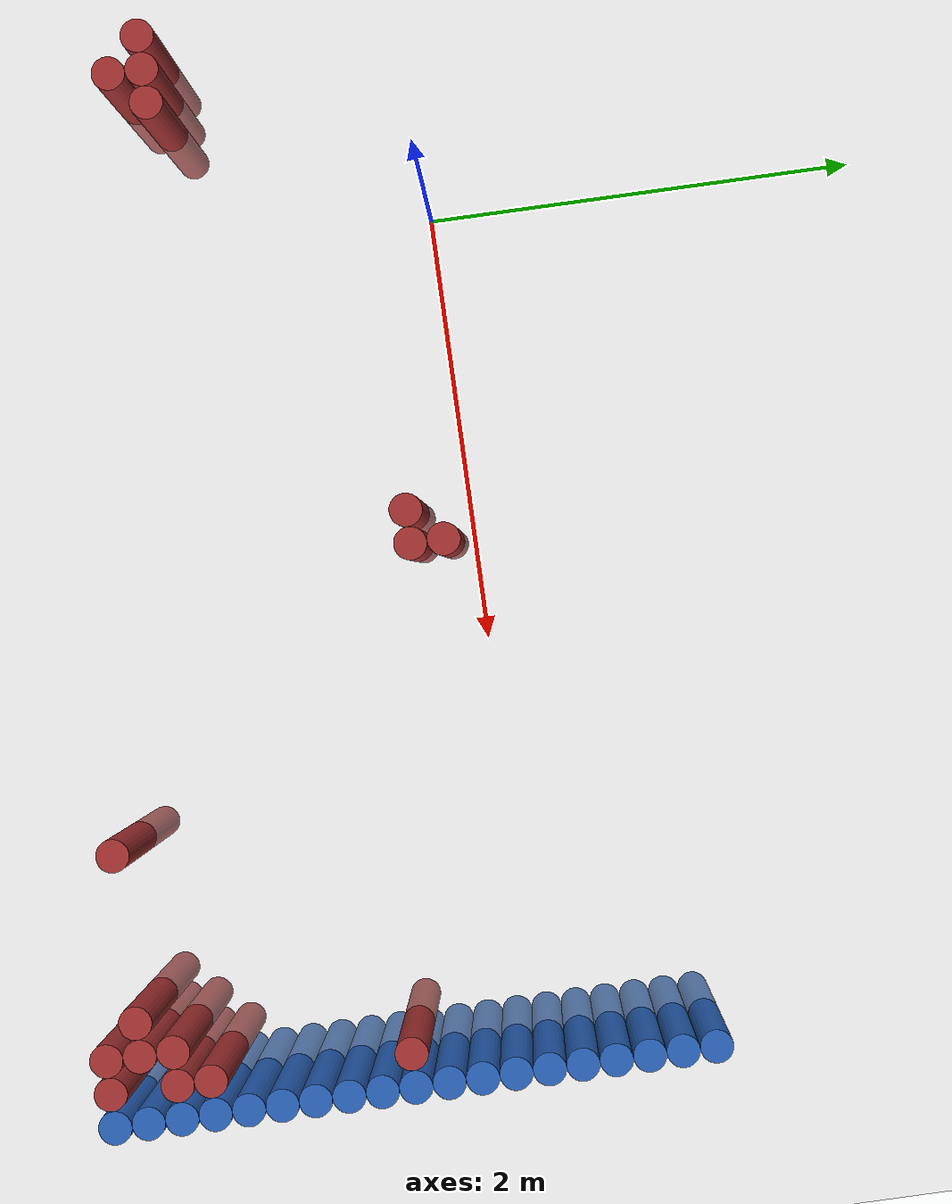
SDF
<sdf version="1.6">
 <world name="default">
  <model name="ground_plane">
   <static>1</static>
   <link name="link">
    <collision name="collision">
     <geometry><plane><normal>0 0 1</normal><size>100 100</size></plane></geometry>
     <surface><friction><ode><mu>100</mu><mu2>50</mu2></ode></friction></surface>
    </collision>
    <visual name="visual">
     <cast_shadows>0</cast_shadows>
     <geometry><plane><normal>0 0 1</normal><size>100 100</size></plane></geometry>
     <material>
      <script><uri>file://media/materials/scripts/gazebo.material</uri><name>Gazebo/Grey</name></script>
     </material>
    </visual>
   </link>
  </model>
  <model name="unit_cylinder_88">
   <static>1</static>
   <pose>3.925000 -1.925000 0.000000 0.000000 0.000000 0.000000</pose>
   <link name="link">
    <inertial>
     <mass>1</mass>
     <inertia><ixx>0.145833</ixx><ixy>0</ixy><ixz>0</ixz><iyy>0.145833</iyy><iyz>0</iyz><izz>0.125</izz></inertia>
    </inertial>
    <collision name="collision">
     <geometry><cylinder><radius>0.075000</radius><length>1.5</length></cylinder></geometry>
    </collision>
    <visual name="visual">
     <geometry><cylinder><radius>0.075000</radius><length>1.5</length></cylinder></geometry>
     <material>
      <ambient>0.152000 0.379000 0.720000 1</ambient>
      <diffuse>0.152000 0.379000 0.720000 1</diffuse>
     </material>
     <material>
      <script><name>Gazebo/Grey</name><uri>file://media/materials/scripts/gazebo.material</uri></script>
     </material>
    </visual>
   </link>
  </model>
  <model name="unit_cylinder_90">
   <static>1</static>
   <pose>3.925000 -1.775000 0.000000 0.000000 0.000000 0.000000</pose>
   <link name="link">
    <inertial>
     <mass>1</mass>
     <inertia><ixx>0.145833</ixx><ixy>0</ixy><ixz>0</ixz><iyy>0.145833</iyy><iyz>0</iyz><izz>0.125</izz></inertia>
    </inertial>
    <collision name="collision">
     <geometry><cylinder><radius>0.075000</radius><length>1.5</length></cylinder></geometry>
    </collision>
    <visual name="visual">
     <geometry><cylinder><radius>0.075000</radius><length>1.5</length></cylinder></geometry>
     <material>
      <ambient>0.152000 0.379000 0.720000 1</ambient>
      <diffuse>0.152000 0.379000 0.720000 1</diffuse>
     </material>
     <material>
      <script><name>Gazebo/Grey</name><uri>file://media/materials/scripts/gazebo.material</uri></script>
     </material>
    </visual>
   </link>
  </model>
  <model name="unit_cylinder_92">
   <static>1</static>
   <pose>3.925000 -1.625000 0.000000 0.000000 0.000000 0.000000</pose>
   <link name="link">
    <inertial>
     <mass>1</mass>
     <inertia><ixx>0.145833</ixx><ixy>0</ixy><ixz>0</ixz><iyy>0.145833</iyy><iyz>0</iyz><izz>0.125</izz></inertia>
    </inertial>
    <collision name="collision">
     <geometry><cylinder><radius>0.075000</radius><length>1.5</length></cylinder></geometry>
    </collision>
    <visual name="visual">
     <geometry><cylinder><radius>0.075000</radius><length>1.5</length></cylinder></geometry>
     <material>
      <ambient>0.152000 0.379000 0.720000 1</ambient>
      <diffuse>0.152000 0.379000 0.720000 1</diffuse>
     </material>
     <material>
      <script><name>Gazebo/Grey</name><uri>file://media/materials/scripts/gazebo.material</uri></script>
     </material>
    </visual>
   </link>
  </model>
  <model name="unit_cylinder_94">
   <static>1</static>
   <pose>3.925000 -1.475000 0.000000 0.000000 0.000000 0.000000</pose>
   <link name="link">
    <inertial>
     <mass>1</mass>
     <inertia><ixx>0.145833</ixx><ixy>0</ixy><ixz>0</ixz><iyy>0.145833</iyy><iyz>0</iyz><izz>0.125</izz></inertia>
    </inertial>
    <collision name="collision">
     <geometry><cylinder><radius>0.075000</radius><length>1.5</length></cylinder></geometry>
    </collision>
    <visual name="visual">
     <geometry><cylinder><radius>0.075000</radius><length>1.5</length></cylinder></geometry>
     <material>
      <ambient>0.152000 0.379000 0.720000 1</ambient>
      <diffuse>0.152000 0.379000 0.720000 1</diffuse>
     </material>
     <material>
      <script><name>Gazebo/Grey</name><uri>file://media/materials/scripts/gazebo.material</uri></script>
     </material>
    </visual>
   </link>
  </model>
  <model name="unit_cylinder_96">
   <static>1</static>
   <pose>3.925000 -1.325000 0.000000 0.000000 0.000000 0.000000</pose>
   <link name="link">
    <inertial>
     <mass>1</mass>
     <inertia><ixx>0.145833</ixx><ixy>0</ixy><ixz>0</ixz><iyy>0.145833</iyy><iyz>0</iyz><izz>0.125</izz></inertia>
    </inertial>
    <collision name="collision">
     <geometry><cylinder><radius>0.075000</radius><length>1.5</length></cylinder></geometry>
    </collision>
    <visual name="visual">
     <geometry><cylinder><radius>0.075000</radius><length>1.5</length></cylinder></geometry>
     <material>
      <ambient>0.152000 0.379000 0.720000 1</ambient>
      <diffuse>0.152000 0.379000 0.720000 1</diffuse>
     </material>
     <material>
      <script><name>Gazebo/Grey</name><uri>file://media/materials/scripts/gazebo.material</uri></script>
     </material>
    </visual>
   </link>
  </model>
  <model name="unit_cylinder_98">
   <static>1</static>
   <pose>3.925000 -1.175000 0.000000 0.000000 0.000000 0.000000</pose>
   <link name="link">
    <inertial>
     <mass>1</mass>
     <inertia><ixx>0.145833</ixx><ixy>0</ixy><ixz>0</ixz><iyy>0.145833</iyy><iyz>0</iyz><izz>0.125</izz></inertia>
    </inertial>
    <collision name="collision">
     <geometry><cylinder><radius>0.075000</radius><length>1.5</length></cylinder></geometry>
    </collision>
    <visual name="visual">
     <geometry><cylinder><radius>0.075000</radius><length>1.5</length></cylinder></geometry>
     <material>
      <ambient>0.152000 0.379000 0.720000 1</ambient>
      <diffuse>0.152000 0.379000 0.720000 1</diffuse>
     </material>
     <material>
      <script><name>Gazebo/Grey</name><uri>file://media/materials/scripts/gazebo.material</uri></script>
     </material>
    </visual>
   </link>
  </model>
  <model name="unit_cylinder_100">
   <static>1</static>
   <pose>3.925000 -1.025000 0.000000 0.000000 0.000000 0.000000</pose>
   <link name="link">
    <inertial>
     <mass>1</mass>
     <inertia><ixx>0.145833</ixx><ixy>0</ixy><ixz>0</ixz><iyy>0.145833</iyy><iyz>0</iyz><izz>0.125</izz></inertia>
    </inertial>
    <collision name="collision">
     <geometry><cylinder><radius>0.075000</radius><length>1.5</length></cylinder></geometry>
    </collision>
    <visual name="visual">
     <geometry><cylinder><radius>0.075000</radius><length>1.5</length></cylinder></geometry>
     <material>
      <ambient>0.152000 0.379000 0.720000 1</ambient>
      <diffuse>0.152000 0.379000 0.720000 1</diffuse>
     </material>
     <material>
      <script><name>Gazebo/Grey</name><uri>file://media/materials/scripts/gazebo.material</uri></script>
     </material>
    </visual>
   </link>
  </model>
  <model name="unit_cylinder_102">
   <static>1</static>
   <pose>3.925000 -0.875000 0.000000 0.000000 0.000000 0.000000</pose>
   <link name="link">
    <inertial>
     <mass>1</mass>
     <inertia><ixx>0.145833</ixx><ixy>0</ixy><ixz>0</ixz><iyy>0.145833</iyy><iyz>0</iyz><izz>0.125</izz></inertia>
    </inertial>
    <collision name="collision">
     <geometry><cylinder><radius>0.075000</radius><length>1.5</length></cylinder></geometry>
    </collision>
    <visual name="visual">
     <geometry><cylinder><radius>0.075000</radius><length>1.5</length></cylinder></geometry>
     <material>
      <ambient>0.152000 0.379000 0.720000 1</ambient>
      <diffuse>0.152000 0.379000 0.720000 1</diffuse>
     </material>
     <material>
      <script><name>Gazebo/Grey</name><uri>file://media/materials/scripts/gazebo.material</uri></script>
     </material>
    </visual>
   </link>
  </model>
  <model name="unit_cylinder_104">
   <static>1</static>
   <pose>3.925000 -0.725000 0.000000 0.000000 0.000000 0.000000</pose>
   <link name="link">
    <inertial>
     <mass>1</mass>
     <inertia><ixx>0.145833</ixx><ixy>0</ixy><ixz>0</ixz><iyy>0.145833</iyy><iyz>0</iyz><izz>0.125</izz></inertia>
    </inertial>
    <collision name="collision">
     <geometry><cylinder><radius>0.075000</radius><length>1.5</length></cylinder></geometry>
    </collision>
    <visual name="visual">
     <geometry><cylinder><radius>0.075000</radius><length>1.5</length></cylinder></geometry>
     <material>
      <ambient>0.152000 0.379000 0.720000 1</ambient>
      <diffuse>0.152000 0.379000 0.720000 1</diffuse>
     </material>
     <material>
      <script><name>Gazebo/Grey</name><uri>file://media/materials/scripts/gazebo.material</uri></script>
     </material>
    </visual>
   </link>
  </model>
  <model name="unit_cylinder_106">
   <static>1</static>
   <pose>3.925000 -0.575000 0.000000 0.000000 0.000000 0.000000</pose>
   <link name="link">
    <inertial>
     <mass>1</mass>
     <inertia><ixx>0.145833</ixx><ixy>0</ixy><ixz>0</ixz><iyy>0.145833</iyy><iyz>0</iyz><izz>0.125</izz></inertia>
    </inertial>
    <collision name="collision">
     <geometry><cylinder><radius>0.075000</radius><length>1.5</length></cylinder></geometry>
    </collision>
    <visual name="visual">
     <geometry><cylinder><radius>0.075000</radius><length>1.5</length></cylinder></geometry>
     <material>
      <ambient>0.152000 0.379000 0.720000 1</ambient>
      <diffuse>0.152000 0.379000 0.720000 1</diffuse>
     </material>
     <material>
      <script><name>Gazebo/Grey</name><uri>file://media/materials/scripts/gazebo.material</uri></script>
     </material>
    </visual>
   </link>
  </model>
  <model name="unit_cylinder_108">
   <static>1</static>
   <pose>3.925000 -0.425000 0.000000 0.000000 0.000000 0.000000</pose>
   <link name="link">
    <inertial>
     <mass>1</mass>
     <inertia><ixx>0.145833</ixx><ixy>0</ixy><ixz>0</ixz><iyy>0.145833</iyy><iyz>0</iyz><izz>0.125</izz></inertia>
    </inertial>
    <collision name="collision">
     <geometry><cylinder><radius>0.075000</radius><length>1.5</length></cylinder></geometry>
    </collision>
    <visual name="visual">
     <geometry><cylinder><radius>0.075000</radius><length>1.5</length></cylinder></geometry>
     <material>
      <ambient>0.152000 0.379000 0.720000 1</ambient>
      <diffuse>0.152000 0.379000 0.720000 1</diffuse>
     </material>
     <material>
      <script><name>Gazebo/Grey</name><uri>file://media/materials/scripts/gazebo.material</uri></script>
     </material>
    </visual>
   </link>
  </model>
  <model name="unit_cylinder_110">
   <static>1</static>
   <pose>3.925000 -0.275000 0.000000 0.000000 0.000000 0.000000</pose>
   <link name="link">
    <inertial>
     <mass>1</mass>
     <inertia><ixx>0.145833</ixx><ixy>0</ixy><ixz>0</ixz><iyy>0.145833</iyy><iyz>0</iyz><izz>0.125</izz></inertia>
    </inertial>
    <collision name="collision">
     <geometry><cylinder><radius>0.075000</radius><length>1.5</length></cylinder></geometry>
    </collision>
    <visual name="visual">
     <geometry><cylinder><radius>0.075000</radius><length>1.5</length></cylinder></geometry>
     <material>
      <ambient>0.152000 0.379000 0.720000 1</ambient>
      <diffuse>0.152000 0.379000 0.720000 1</diffuse>
     </material>
     <material>
      <script><name>Gazebo/Grey</name><uri>file://media/materials/scripts/gazebo.material</uri></script>
     </material>
    </visual>
   </link>
  </model>
  <model name="unit_cylinder_112">
   <static>1</static>
   <pose>3.925000 -0.125000 0.000000 0.000000 0.000000 0.000000</pose>
   <link name="link">
    <inertial>
     <mass>1</mass>
     <inertia><ixx>0.145833</ixx><ixy>0</ixy><ixz>0</ixz><iyy>0.145833</iyy><iyz>0</iyz><izz>0.125</izz></inertia>
    </inertial>
    <collision name="collision">
     <geometry><cylinder><radius>0.075000</radius><length>1.5</length></cylinder></geometry>
    </collision>
    <visual name="visual">
     <geometry><cylinder><radius>0.075000</radius><length>1.5</length></cylinder></geometry>
     <material>
      <ambient>0.152000 0.379000 0.720000 1</ambient>
      <diffuse>0.152000 0.379000 0.720000 1</diffuse>
     </material>
     <material>
      <script><name>Gazebo/Grey</name><uri>file://media/materials/scripts/gazebo.material</uri></script>
     </material>
    </visual>
   </link>
  </model>
  <model name="unit_cylinder_114">
   <static>1</static>
   <pose>3.925000 0.025000 0.000000 0.000000 0.000000 0.000000</pose>
   <link name="link">
    <inertial>
     <mass>1</mass>
     <inertia><ixx>0.145833</ixx><ixy>0</ixy><ixz>0</ixz><iyy>0.145833</iyy><iyz>0</iyz><izz>0.125</izz></inertia>
    </inertial>
    <collision name="collision">
     <geometry><cylinder><radius>0.075000</radius><length>1.5</length></cylinder></geometry>
    </collision>
    <visual name="visual">
     <geometry><cylinder><radius>0.075000</radius><length>1.5</length></cylinder></geometry>
     <material>
      <ambient>0.152000 0.379000 0.720000 1</ambient>
      <diffuse>0.152000 0.379000 0.720000 1</diffuse>
     </material>
     <material>
      <script><name>Gazebo/Grey</name><uri>file://media/materials/scripts/gazebo.material</uri></script>
     </material>
    </visual>
   </link>
  </model>
  <model name="unit_cylinder_116">
   <static>1</static>
   <pose>3.925000 0.175000 0.000000 0.000000 0.000000 0.000000</pose>
   <link name="link">
    <inertial>
     <mass>1</mass>
     <inertia><ixx>0.145833</ixx><ixy>0</ixy><ixz>0</ixz><iyy>0.145833</iyy><iyz>0</iyz><izz>0.125</izz></inertia>
    </inertial>
    <collision name="collision">
     <geometry><cylinder><radius>0.075000</radius><length>1.5</length></cylinder></geometry>
    </collision>
    <visual name="visual">
     <geometry><cylinder><radius>0.075000</radius><length>1.5</length></cylinder></geometry>
     <material>
      <ambient>0.152000 0.379000 0.720000 1</ambient>
      <diffuse>0.152000 0.379000 0.720000 1</diffuse>
     </material>
     <material>
      <script><name>Gazebo/Grey</name><uri>file://media/materials/scripts/gazebo.material</uri></script>
     </material>
    </visual>
   </link>
  </model>
  <model name="unit_cylinder_118">
   <static>1</static>
   <pose>3.925000 0.325000 0.000000 0.000000 0.000000 0.000000</pose>
   <link name="link">
    <inertial>
     <mass>1</mass>
     <inertia><ixx>0.145833</ixx><ixy>0</ixy><ixz>0</ixz><iyy>0.145833</iyy><iyz>0</iyz><izz>0.125</izz></inertia>
    </inertial>
    <collision name="collision">
     <geometry><cylinder><radius>0.075000</radius><length>1.5</length></cylinder></geometry>
    </collision>
    <visual name="visual">
     <geometry><cylinder><radius>0.075000</radius><length>1.5</length></cylinder></geometry>
     <material>
      <ambient>0.152000 0.379000 0.720000 1</ambient>
      <diffuse>0.152000 0.379000 0.720000 1</diffuse>
     </material>
     <material>
      <script><name>Gazebo/Grey</name><uri>file://media/materials/scripts/gazebo.material</uri></script>
     </material>
    </visual>
   </link>
  </model>
  <model name="unit_cylinder_120">
   <static>1</static>
   <pose>3.925000 0.475000 0.000000 0.000000 0.000000 0.000000</pose>
   <link name="link">
    <inertial>
     <mass>1</mass>
     <inertia><ixx>0.145833</ixx><ixy>0</ixy><ixz>0</ixz><iyy>0.145833</iyy><iyz>0</iyz><izz>0.125</izz></inertia>
    </inertial>
    <collision name="collision">
     <geometry><cylinder><radius>0.075000</radius><length>1.5</length></cylinder></geometry>
    </collision>
    <visual name="visual">
     <geometry><cylinder><radius>0.075000</radius><length>1.5</length></cylinder></geometry>
     <material>
      <ambient>0.152000 0.379000 0.720000 1</ambient>
      <diffuse>0.152000 0.379000 0.720000 1</diffuse>
     </material>
     <material>
      <script><name>Gazebo/Grey</name><uri>file://media/materials/scripts/gazebo.material</uri></script>
     </material>
    </visual>
   </link>
  </model>
  <model name="unit_cylinder_122">
   <static>1</static>
   <pose>3.925000 0.625000 0.000000 0.000000 0.000000 0.000000</pose>
   <link name="link">
    <inertial>
     <mass>1</mass>
     <inertia><ixx>0.145833</ixx><ixy>0</ixy><ixz>0</ixz><iyy>0.145833</iyy><iyz>0</iyz><izz>0.125</izz></inertia>
    </inertial>
    <collision name="collision">
     <geometry><cylinder><radius>0.075000</radius><length>1.5</length></cylinder></geometry>
    </collision>
    <visual name="visual">
     <geometry><cylinder><radius>0.075000</radius><length>1.5</length></cylinder></geometry>
     <material>
      <ambient>0.152000 0.379000 0.720000 1</ambient>
      <diffuse>0.152000 0.379000 0.720000 1</diffuse>
     </material>
     <material>
      <script><name>Gazebo/Grey</name><uri>file://media/materials/scripts/gazebo.material</uri></script>
     </material>
    </visual>
   </link>
  </model>
  <model name="unit_cylinder_124">
   <static>1</static>
   <pose>3.925000 0.775000 0.000000 0.000000 0.000000 0.000000</pose>
   <link name="link">
    <inertial>
     <mass>1</mass>
     <inertia><ixx>0.145833</ixx><ixy>0</ixy><ixz>0</ixz><iyy>0.145833</iyy><iyz>0</iyz><izz>0.125</izz></inertia>
    </inertial>
    <collision name="collision">
     <geometry><cylinder><radius>0.075000</radius><length>1.5</length></cylinder></geometry>
    </collision>
    <visual name="visual">
     <geometry><cylinder><radius>0.075000</radius><length>1.5</length></cylinder></geometry>
     <material>
      <ambient>0.152000 0.379000 0.720000 1</ambient>
      <diffuse>0.152000 0.379000 0.720000 1</diffuse>
     </material>
     <material>
      <script><name>Gazebo/Grey</name><uri>file://media/materials/scripts/gazebo.material</uri></script>
     </material>
    </visual>
   </link>
  </model>
  <model name="unit_cylinder_344">
   <static>1</static>
   <pose>-0.875000 -1.175000 0.000000 0.000000 0.000000 0.000000</pose>
   <link name="link">
    <inertial>
     <mass>1</mass>
     <inertia><ixx>0.145833</ixx><ixy>0</ixy><ixz>0</ixz><iyy>0.145833</iyy><iyz>0</iyz><izz>0.125</izz></inertia>
    </inertial>
    <collision name="collision">
     <geometry><cylinder><radius>0.075000</radius><length>1.5</length></cylinder></geometry>
    </collision>
    <visual name="visual">
     <geometry><cylinder><radius>0.075000</radius><length>1.5</length></cylinder></geometry>
     <material>
      <ambient>0.648000 0.192000 0.192000 1</ambient>
      <diffuse>0.648000 0.192000 0.192000 1</diffuse>
     </material>
     <material>
      <script><name>Gazebo/Grey</name><uri>file://media/materials/scripts/gazebo.material</uri></script>
     </material>
    </visual>
   </link>
  </model>
  <model name="unit_cylinder_347">
   <static>1</static>
   <pose>-0.725000 -1.325000 0.000000 0.000000 0.000000 0.000000</pose>
   <link name="link">
    <inertial>
     <mass>1</mass>
     <inertia><ixx>0.145833</ixx><ixy>0</ixy><ixz>0</ixz><iyy>0.145833</iyy><iyz>0</iyz><izz>0.125</izz></inertia>
    </inertial>
    <collision name="collision">
     <geometry><cylinder><radius>0.075000</radius><length>1.5</length></cylinder></geometry>
    </collision>
    <visual name="visual">
     <geometry><cylinder><radius>0.075000</radius><length>1.5</length></cylinder></geometry>
     <material>
      <ambient>0.648000 0.192000 0.192000 1</ambient>
      <diffuse>0.648000 0.192000 0.192000 1</diffuse>
     </material>
     <material>
      <script><name>Gazebo/Grey</name><uri>file://media/materials/scripts/gazebo.material</uri></script>
     </material>
    </visual>
   </link>
  </model>
  <model name="unit_cylinder_348">
   <static>1</static>
   <pose>-0.725000 -1.175000 0.000000 0.000000 0.000000 0.000000</pose>
   <link name="link">
    <inertial>
     <mass>1</mass>
     <inertia><ixx>0.145833</ixx><ixy>0</ixy><ixz>0</ixz><iyy>0.145833</iyy><iyz>0</iyz><izz>0.125</izz></inertia>
    </inertial>
    <collision name="collision">
     <geometry><cylinder><radius>0.075000</radius><length>1.5</length></cylinder></geometry>
    </collision>
    <visual name="visual">
     <geometry><cylinder><radius>0.075000</radius><length>1.5</length></cylinder></geometry>
     <material>
      <ambient>0.648000 0.192000 0.192000 1</ambient>
      <diffuse>0.648000 0.192000 0.192000 1</diffuse>
     </material>
     <material>
      <script><name>Gazebo/Grey</name><uri>file://media/materials/scripts/gazebo.material</uri></script>
     </material>
    </visual>
   </link>
  </model>
  <model name="unit_cylinder_350">
   <static>1</static>
   <pose>-0.575000 -1.175000 0.000000 0.000000 0.000000 0.000000</pose>
   <link name="link">
    <inertial>
     <mass>1</mass>
     <inertia><ixx>0.145833</ixx><ixy>0</ixy><ixz>0</ixz><iyy>0.145833</iyy><iyz>0</iyz><izz>0.125</izz></inertia>
    </inertial>
    <collision name="collision">
     <geometry><cylinder><radius>0.075000</radius><length>1.5</length></cylinder></geometry>
    </collision>
    <visual name="visual">
     <geometry><cylinder><radius>0.075000</radius><length>1.5</length></cylinder></geometry>
     <material>
      <ambient>0.648000 0.192000 0.192000 1</ambient>
      <diffuse>0.648000 0.192000 0.192000 1</diffuse>
     </material>
     <material>
      <script><name>Gazebo/Grey</name><uri>file://media/materials/scripts/gazebo.material</uri></script>
     </material>
    </visual>
   </link>
  </model>
  <model name="unit_cylinder_363">
   <static>1</static>
   <pose>1.375000 -0.275000 0.000000 0.000000 0.000000 0.000000</pose>
   <link name="link">
    <inertial>
     <mass>1</mass>
     <inertia><ixx>0.145833</ixx><ixy>0</ixy><ixz>0</ixz><iyy>0.145833</iyy><iyz>0</iyz><izz>0.125</izz></inertia>
    </inertial>
    <collision name="collision">
     <geometry><cylinder><radius>0.075000</radius><length>1.5</length></cylinder></geometry>
    </collision>
    <visual name="visual">
     <geometry><cylinder><radius>0.075000</radius><length>1.5</length></cylinder></geometry>
     <material>
      <ambient>0.648000 0.192000 0.192000 1</ambient>
      <diffuse>0.648000 0.192000 0.192000 1</diffuse>
     </material>
     <material>
      <script><name>Gazebo/Grey</name><uri>file://media/materials/scripts/gazebo.material</uri></script>
     </material>
    </visual>
   </link>
  </model>
  <model name="unit_cylinder_364">
   <static>1</static>
   <pose>1.525000 -0.275000 0.000000 0.000000 0.000000 0.000000</pose>
   <link name="link">
    <inertial>
     <mass>1</mass>
     <inertia><ixx>0.145833</ixx><ixy>0</ixy><ixz>0</ixz><iyy>0.145833</iyy><iyz>0</iyz><izz>0.125</izz></inertia>
    </inertial>
    <collision name="collision">
     <geometry><cylinder><radius>0.075000</radius><length>1.5</length></cylinder></geometry>
    </collision>
    <visual name="visual">
     <geometry><cylinder><radius>0.075000</radius><length>1.5</length></cylinder></geometry>
     <material>
      <ambient>0.648000 0.192000 0.192000 1</ambient>
      <diffuse>0.648000 0.192000 0.192000 1</diffuse>
     </material>
     <material>
      <script><name>Gazebo/Grey</name><uri>file://media/materials/scripts/gazebo.material</uri></script>
     </material>
    </visual>
   </link>
  </model>
  <model name="unit_cylinder_365">
   <static>1</static>
   <pose>1.525000 -0.125000 0.000000 0.000000 0.000000 0.000000</pose>
   <link name="link">
    <inertial>
     <mass>1</mass>
     <inertia><ixx>0.145833</ixx><ixy>0</ixy><ixz>0</ixz><iyy>0.145833</iyy><iyz>0</iyz><izz>0.125</izz></inertia>
    </inertial>
    <collision name="collision">
     <geometry><cylinder><radius>0.075000</radius><length>1.5</length></cylinder></geometry>
    </collision>
    <visual name="visual">
     <geometry><cylinder><radius>0.075000</radius><length>1.5</length></cylinder></geometry>
     <material>
      <ambient>0.648000 0.192000 0.192000 1</ambient>
      <diffuse>0.648000 0.192000 0.192000 1</diffuse>
     </material>
     <material>
      <script><name>Gazebo/Grey</name><uri>file://media/materials/scripts/gazebo.material</uri></script>
     </material>
    </visual>
   </link>
  </model>
  <model name="unit_cylinder_375">
   <static>1</static>
   <pose>2.725000 -1.775000 0.000000 0.000000 0.000000 0.000000</pose>
   <link name="link">
    <inertial>
     <mass>1</mass>
     <inertia><ixx>0.145833</ixx><ixy>0</ixy><ixz>0</ixz><iyy>0.145833</iyy><iyz>0</iyz><izz>0.125</izz></inertia>
    </inertial>
    <collision name="collision">
     <geometry><cylinder><radius>0.075000</radius><length>1.5</length></cylinder></geometry>
    </collision>
    <visual name="visual">
     <geometry><cylinder><radius>0.075000</radius><length>1.5</length></cylinder></geometry>
     <material>
      <ambient>0.648000 0.192000 0.192000 1</ambient>
      <diffuse>0.648000 0.192000 0.192000 1</diffuse>
     </material>
     <material>
      <script><name>Gazebo/Grey</name><uri>file://media/materials/scripts/gazebo.material</uri></script>
     </material>
    </visual>
   </link>
  </model>
  <model name="unit_cylinder_387">
   <static>1</static>
   <pose>3.475000 -1.775000 0.000000 0.000000 0.000000 0.000000</pose>
   <link name="link">
    <inertial>
     <mass>1</mass>
     <inertia><ixx>0.145833</ixx><ixy>0</ixy><ixz>0</ixz><iyy>0.145833</iyy><iyz>0</iyz><izz>0.125</izz></inertia>
    </inertial>
    <collision name="collision">
     <geometry><cylinder><radius>0.075000</radius><length>1.5</length></cylinder></geometry>
    </collision>
    <visual name="visual">
     <geometry><cylinder><radius>0.075000</radius><length>1.5</length></cylinder></geometry>
     <material>
      <ambient>0.648000 0.192000 0.192000 1</ambient>
      <diffuse>0.648000 0.192000 0.192000 1</diffuse>
     </material>
     <material>
      <script><name>Gazebo/Grey</name><uri>file://media/materials/scripts/gazebo.material</uri></script>
     </material>
    </visual>
   </link>
  </model>
  <model name="unit_cylinder_391">
   <static>1</static>
   <pose>3.625000 -1.925000 0.000000 0.000000 0.000000 0.000000</pose>
   <link name="link">
    <inertial>
     <mass>1</mass>
     <inertia><ixx>0.145833</ixx><ixy>0</ixy><ixz>0</ixz><iyy>0.145833</iyy><iyz>0</iyz><izz>0.125</izz></inertia>
    </inertial>
    <collision name="collision">
     <geometry><cylinder><radius>0.075000</radius><length>1.5</length></cylinder></geometry>
    </collision>
    <visual name="visual">
     <geometry><cylinder><radius>0.075000</radius><length>1.5</length></cylinder></geometry>
     <material>
      <ambient>0.648000 0.192000 0.192000 1</ambient>
      <diffuse>0.648000 0.192000 0.192000 1</diffuse>
     </material>
     <material>
      <script><name>Gazebo/Grey</name><uri>file://media/materials/scripts/gazebo.material</uri></script>
     </material>
    </visual>
   </link>
  </model>
  <model name="unit_cylinder_392">
   <static>1</static>
   <pose>3.625000 -1.775000 0.000000 0.000000 0.000000 0.000000</pose>
   <link name="link">
    <inertial>
     <mass>1</mass>
     <inertia><ixx>0.145833</ixx><ixy>0</ixy><ixz>0</ixz><iyy>0.145833</iyy><iyz>0</iyz><izz>0.125</izz></inertia>
    </inertial>
    <collision name="collision">
     <geometry><cylinder><radius>0.075000</radius><length>1.5</length></cylinder></geometry>
    </collision>
    <visual name="visual">
     <geometry><cylinder><radius>0.075000</radius><length>1.5</length></cylinder></geometry>
     <material>
      <ambient>0.648000 0.192000 0.192000 1</ambient>
      <diffuse>0.648000 0.192000 0.192000 1</diffuse>
     </material>
     <material>
      <script><name>Gazebo/Grey</name><uri>file://media/materials/scripts/gazebo.material</uri></script>
     </material>
    </visual>
   </link>
  </model>
  <model name="unit_cylinder_393">
   <static>1</static>
   <pose>3.625000 -1.625000 0.000000 0.000000 0.000000 0.000000</pose>
   <link name="link">
    <inertial>
     <mass>1</mass>
     <inertia><ixx>0.145833</ixx><ixy>0</ixy><ixz>0</ixz><iyy>0.145833</iyy><iyz>0</iyz><izz>0.125</izz></inertia>
    </inertial>
    <collision name="collision">
     <geometry><cylinder><radius>0.075000</radius><length>1.5</length></cylinder></geometry>
    </collision>
    <visual name="visual">
     <geometry><cylinder><radius>0.075000</radius><length>1.5</length></cylinder></geometry>
     <material>
      <ambient>0.648000 0.192000 0.192000 1</ambient>
      <diffuse>0.648000 0.192000 0.192000 1</diffuse>
     </material>
     <material>
      <script><name>Gazebo/Grey</name><uri>file://media/materials/scripts/gazebo.material</uri></script>
     </material>
    </visual>
   </link>
  </model>
  <model name="unit_cylinder_403">
   <static>1</static>
   <pose>3.775000 -1.925000 0.000000 0.000000 0.000000 0.000000</pose>
   <link name="link">
    <inertial>
     <mass>1</mass>
     <inertia><ixx>0.145833</ixx><ixy>0</ixy><ixz>0</ixz><iyy>0.145833</iyy><iyz>0</iyz><izz>0.125</izz></inertia>
    </inertial>
    <collision name="collision">
     <geometry><cylinder><radius>0.075000</radius><length>1.5</length></cylinder></geometry>
    </collision>
    <visual name="visual">
     <geometry><cylinder><radius>0.075000</radius><length>1.5</length></cylinder></geometry>
     <material>
      <ambient>0.648000 0.192000 0.192000 1</ambient>
      <diffuse>0.648000 0.192000 0.192000 1</diffuse>
     </material>
     <material>
      <script><name>Gazebo/Grey</name><uri>file://media/materials/scripts/gazebo.material</uri></script>
     </material>
    </visual>
   </link>
  </model>
  <model name="unit_cylinder_404">
   <static>1</static>
   <pose>3.775000 -1.625000 0.000000 0.000000 0.000000 0.000000</pose>
   <link name="link">
    <inertial>
     <mass>1</mass>
     <inertia><ixx>0.145833</ixx><ixy>0</ixy><ixz>0</ixz><iyy>0.145833</iyy><iyz>0</iyz><izz>0.125</izz></inertia>
    </inertial>
    <collision name="collision">
     <geometry><cylinder><radius>0.075000</radius><length>1.5</length></cylinder></geometry>
    </collision>
    <visual name="visual">
     <geometry><cylinder><radius>0.075000</radius><length>1.5</length></cylinder></geometry>
     <material>
      <ambient>0.648000 0.192000 0.192000 1</ambient>
      <diffuse>0.648000 0.192000 0.192000 1</diffuse>
     </material>
     <material>
      <script><name>Gazebo/Grey</name><uri>file://media/materials/scripts/gazebo.material</uri></script>
     </material>
    </visual>
   </link>
  </model>
  <model name="unit_cylinder_405">
   <static>1</static>
   <pose>3.775000 -1.475000 0.000000 0.000000 0.000000 0.000000</pose>
   <link name="link">
    <inertial>
     <mass>1</mass>
     <inertia><ixx>0.145833</ixx><ixy>0</ixy><ixz>0</ixz><iyy>0.145833</iyy><iyz>0</iyz><izz>0.125</izz></inertia>
    </inertial>
    <collision name="collision">
     <geometry><cylinder><radius>0.075000</radius><length>1.5</length></cylinder></geometry>
    </collision>
    <visual name="visual">
     <geometry><cylinder><radius>0.075000</radius><length>1.5</length></cylinder></geometry>
     <material>
      <ambient>0.648000 0.192000 0.192000 1</ambient>
      <diffuse>0.648000 0.192000 0.192000 1</diffuse>
     </material>
     <material>
      <script><name>Gazebo/Grey</name><uri>file://media/materials/scripts/gazebo.material</uri></script>
     </material>
    </visual>
   </link>
  </model>
  <model name="unit_cylinder_406">
   <static>1</static>
   <pose>3.775000 -0.575000 0.000000 0.000000 0.000000 0.000000</pose>
   <link name="link">
    <inertial>
     <mass>1</mass>
     <inertia><ixx>0.145833</ixx><ixy>0</ixy><ixz>0</ixz><iyy>0.145833</iyy><iyz>0</iyz><izz>0.125</izz></inertia>
    </inertial>
    <collision name="collision">
     <geometry><cylinder><radius>0.075000</radius><length>1.5</length></cylinder></geometry>
    </collision>
    <visual name="visual">
     <geometry><cylinder><radius>0.075000</radius><length>1.5</length></cylinder></geometry>
     <material>
      <ambient>0.648000 0.192000 0.192000 1</ambient>
      <diffuse>0.648000 0.192000 0.192000 1</diffuse>
     </material>
     <material>
      <script><name>Gazebo/Grey</name><uri>file://media/materials/scripts/gazebo.material</uri></script>
     </material>
    </visual>
   </link>
  </model>
  <model name="unit_cylinder_424">
   <static>1</static>
   <pose>3.925000 -1.925000 0.000000 0.000000 0.000000 0.000000</pose>
   <link name="link">
    <inertial>
     <mass>1</mass>
     <inertia><ixx>0.145833</ixx><ixy>0</ixy><ixz>0</ixz><iyy>0.145833</iyy><iyz>0</iyz><izz>0.125</izz></inertia>
    </inertial>
    <collision name="collision">
     <geometry><cylinder><radius>0.075000</radius><length>1.5</length></cylinder></geometry>
    </collision>
    <visual name="visual">
     <geometry><cylinder><radius>0.075000</radius><length>1.5</length></cylinder></geometry>
     <material>
      <ambient>0.152000 0.379000 0.720000 1</ambient>
      <diffuse>0.152000 0.379000 0.720000 1</diffuse>
     </material>
     <material>
      <script><name>Gazebo/Grey</name><uri>file://media/materials/scripts/gazebo.material</uri></script>
     </material>
    </visual>
   </link>
  </model>
  <model name="unit_cylinder_425">
   <static>1</static>
   <pose>3.925000 -1.775000 0.000000 0.000000 0.000000 0.000000</pose>
   <link name="link">
    <inertial>
     <mass>1</mass>
     <inertia><ixx>0.145833</ixx><ixy>0</ixy><ixz>0</ixz><iyy>0.145833</iyy><iyz>0</iyz><izz>0.125</izz></inertia>
    </inertial>
    <collision name="collision">
     <geometry><cylinder><radius>0.075000</radius><length>1.5</length></cylinder></geometry>
    </collision>
    <visual name="visual">
     <geometry><cylinder><radius>0.075000</radius><length>1.5</length></cylinder></geometry>
     <material>
      <ambient>0.152000 0.379000 0.720000 1</ambient>
      <diffuse>0.152000 0.379000 0.720000 1</diffuse>
     </material>
     <material>
      <script><name>Gazebo/Grey</name><uri>file://media/materials/scripts/gazebo.material</uri></script>
     </material>
    </visual>
   </link>
  </model>
  <model name="unit_cylinder_426">
   <static>1</static>
   <pose>3.925000 -1.625000 0.000000 0.000000 0.000000 0.000000</pose>
   <link name="link">
    <inertial>
     <mass>1</mass>
     <inertia><ixx>0.145833</ixx><ixy>0</ixy><ixz>0</ixz><iyy>0.145833</iyy><iyz>0</iyz><izz>0.125</izz></inertia>
    </inertial>
    <collision name="collision">
     <geometry><cylinder><radius>0.075000</radius><length>1.5</length></cylinder></geometry>
    </collision>
    <visual name="visual">
     <geometry><cylinder><radius>0.075000</radius><length>1.5</length></cylinder></geometry>
     <material>
      <ambient>0.152000 0.379000 0.720000 1</ambient>
      <diffuse>0.152000 0.379000 0.720000 1</diffuse>
     </material>
     <material>
      <script><name>Gazebo/Grey</name><uri>file://media/materials/scripts/gazebo.material</uri></script>
     </material>
    </visual>
   </link>
  </model>
  <model name="unit_cylinder_427">
   <static>1</static>
   <pose>3.925000 -1.475000 0.000000 0.000000 0.000000 0.000000</pose>
   <link name="link">
    <inertial>
     <mass>1</mass>
     <inertia><ixx>0.145833</ixx><ixy>0</ixy><ixz>0</ixz><iyy>0.145833</iyy><iyz>0</iyz><izz>0.125</izz></inertia>
    </inertial>
    <collision name="collision">
     <geometry><cylinder><radius>0.075000</radius><length>1.5</length></cylinder></geometry>
    </collision>
    <visual name="visual">
     <geometry><cylinder><radius>0.075000</radius><length>1.5</length></cylinder></geometry>
     <material>
      <ambient>0.152000 0.379000 0.720000 1</ambient>
      <diffuse>0.152000 0.379000 0.720000 1</diffuse>
     </material>
     <material>
      <script><name>Gazebo/Grey</name><uri>file://media/materials/scripts/gazebo.material</uri></script>
     </material>
    </visual>
   </link>
  </model>
  <model name="unit_cylinder_428">
   <static>1</static>
   <pose>3.925000 -1.325000 0.000000 0.000000 0.000000 0.000000</pose>
   <link name="link">
    <inertial>
     <mass>1</mass>
     <inertia><ixx>0.145833</ixx><ixy>0</ixy><ixz>0</ixz><iyy>0.145833</iyy><iyz>0</iyz><izz>0.125</izz></inertia>
    </inertial>
    <collision name="collision">
     <geometry><cylinder><radius>0.075000</radius><length>1.5</length></cylinder></geometry>
    </collision>
    <visual name="visual">
     <geometry><cylinder><radius>0.075000</radius><length>1.5</length></cylinder></geometry>
     <material>
      <ambient>0.152000 0.379000 0.720000 1</ambient>
      <diffuse>0.152000 0.379000 0.720000 1</diffuse>
     </material>
     <material>
      <script><name>Gazebo/Grey</name><uri>file://media/materials/scripts/gazebo.material</uri></script>
     </material>
    </visual>
   </link>
  </model>
  <model name="unit_cylinder_429">
   <static>1</static>
   <pose>3.925000 -1.175000 0.000000 0.000000 0.000000 0.000000</pose>
   <link name="link">
    <inertial>
     <mass>1</mass>
     <inertia><ixx>0.145833</ixx><ixy>0</ixy><ixz>0</ixz><iyy>0.145833</iyy><iyz>0</iyz><izz>0.125</izz></inertia>
    </inertial>
    <collision name="collision">
     <geometry><cylinder><radius>0.075000</radius><length>1.5</length></cylinder></geometry>
    </collision>
    <visual name="visual">
     <geometry><cylinder><radius>0.075000</radius><length>1.5</length></cylinder></geometry>
     <material>
      <ambient>0.152000 0.379000 0.720000 1</ambient>
      <diffuse>0.152000 0.379000 0.720000 1</diffuse>
     </material>
     <material>
      <script><name>Gazebo/Grey</name><uri>file://media/materials/scripts/gazebo.material</uri></script>
     </material>
    </visual>
   </link>
  </model>
  <model name="unit_cylinder_430">
   <static>1</static>
   <pose>3.925000 -1.025000 0.000000 0.000000 0.000000 0.000000</pose>
   <link name="link">
    <inertial>
     <mass>1</mass>
     <inertia><ixx>0.145833</ixx><ixy>0</ixy><ixz>0</ixz><iyy>0.145833</iyy><iyz>0</iyz><izz>0.125</izz></inertia>
    </inertial>
    <collision name="collision">
     <geometry><cylinder><radius>0.075000</radius><length>1.5</length></cylinder></geometry>
    </collision>
    <visual name="visual">
     <geometry><cylinder><radius>0.075000</radius><length>1.5</length></cylinder></geometry>
     <material>
      <ambient>0.152000 0.379000 0.720000 1</ambient>
      <diffuse>0.152000 0.379000 0.720000 1</diffuse>
     </material>
     <material>
      <script><name>Gazebo/Grey</name><uri>file://media/materials/scripts/gazebo.material</uri></script>
     </material>
    </visual>
   </link>
  </model>
  <model name="unit_cylinder_431">
   <static>1</static>
   <pose>3.925000 -0.875000 0.000000 0.000000 0.000000 0.000000</pose>
   <link name="link">
    <inertial>
     <mass>1</mass>
     <inertia><ixx>0.145833</ixx><ixy>0</ixy><ixz>0</ixz><iyy>0.145833</iyy><iyz>0</iyz><izz>0.125</izz></inertia>
    </inertial>
    <collision name="collision">
     <geometry><cylinder><radius>0.075000</radius><length>1.5</length></cylinder></geometry>
    </collision>
    <visual name="visual">
     <geometry><cylinder><radius>0.075000</radius><length>1.5</length></cylinder></geometry>
     <material>
      <ambient>0.152000 0.379000 0.720000 1</ambient>
      <diffuse>0.152000 0.379000 0.720000 1</diffuse>
     </material>
     <material>
      <script><name>Gazebo/Grey</name><uri>file://media/materials/scripts/gazebo.material</uri></script>
     </material>
    </visual>
   </link>
  </model>
  <model name="unit_cylinder_432">
   <static>1</static>
   <pose>3.925000 -0.725000 0.000000 0.000000 0.000000 0.000000</pose>
   <link name="link">
    <inertial>
     <mass>1</mass>
     <inertia><ixx>0.145833</ixx><ixy>0</ixy><ixz>0</ixz><iyy>0.145833</iyy><iyz>0</iyz><izz>0.125</izz></inertia>
    </inertial>
    <collision name="collision">
     <geometry><cylinder><radius>0.075000</radius><length>1.5</length></cylinder></geometry>
    </collision>
    <visual name="visual">
     <geometry><cylinder><radius>0.075000</radius><length>1.5</length></cylinder></geometry>
     <material>
      <ambient>0.152000 0.379000 0.720000 1</ambient>
      <diffuse>0.152000 0.379000 0.720000 1</diffuse>
     </material>
     <material>
      <script><name>Gazebo/Grey</name><uri>file://media/materials/scripts/gazebo.material</uri></script>
     </material>
    </visual>
   </link>
  </model>
  <model name="unit_cylinder_433">
   <static>1</static>
   <pose>3.925000 -0.575000 0.000000 0.000000 0.000000 0.000000</pose>
   <link name="link">
    <inertial>
     <mass>1</mass>
     <inertia><ixx>0.145833</ixx><ixy>0</ixy><ixz>0</ixz><iyy>0.145833</iyy><iyz>0</iyz><izz>0.125</izz></inertia>
    </inertial>
    <collision name="collision">
     <geometry><cylinder><radius>0.075000</radius><length>1.5</length></cylinder></geometry>
    </collision>
    <visual name="visual">
     <geometry><cylinder><radius>0.075000</radius><length>1.5</length></cylinder></geometry>
     <material>
      <ambient>0.152000 0.379000 0.720000 1</ambient>
      <diffuse>0.152000 0.379000 0.720000 1</diffuse>
     </material>
     <material>
      <script><name>Gazebo/Grey</name><uri>file://media/materials/scripts/gazebo.material</uri></script>
     </material>
    </visual>
   </link>
  </model>
  <model name="unit_cylinder_434">
   <static>1</static>
   <pose>3.925000 -0.425000 0.000000 0.000000 0.000000 0.000000</pose>
   <link name="link">
    <inertial>
     <mass>1</mass>
     <inertia><ixx>0.145833</ixx><ixy>0</ixy><ixz>0</ixz><iyy>0.145833</iyy><iyz>0</iyz><izz>0.125</izz></inertia>
    </inertial>
    <collision name="collision">
     <geometry><cylinder><radius>0.075000</radius><length>1.5</length></cylinder></geometry>
    </collision>
    <visual name="visual">
     <geometry><cylinder><radius>0.075000</radius><length>1.5</length></cylinder></geometry>
     <material>
      <ambient>0.152000 0.379000 0.720000 1</ambient>
      <diffuse>0.152000 0.379000 0.720000 1</diffuse>
     </material>
     <material>
      <script><name>Gazebo/Grey</name><uri>file://media/materials/scripts/gazebo.material</uri></script>
     </material>
    </visual>
   </link>
  </model>
  <model name="unit_cylinder_435">
   <static>1</static>
   <pose>3.925000 -0.275000 0.000000 0.000000 0.000000 0.000000</pose>
   <link name="link">
    <inertial>
     <mass>1</mass>
     <inertia><ixx>0.145833</ixx><ixy>0</ixy><ixz>0</ixz><iyy>0.145833</iyy><iyz>0</iyz><izz>0.125</izz></inertia>
    </inertial>
    <collision name="collision">
     <geometry><cylinder><radius>0.075000</radius><length>1.5</length></cylinder></geometry>
    </collision>
    <visual name="visual">
     <geometry><cylinder><radius>0.075000</radius><length>1.5</length></cylinder></geometry>
     <material>
      <ambient>0.152000 0.379000 0.720000 1</ambient>
      <diffuse>0.152000 0.379000 0.720000 1</diffuse>
     </material>
     <material>
      <script><name>Gazebo/Grey</name><uri>file://media/materials/scripts/gazebo.material</uri></script>
     </material>
    </visual>
   </link>
  </model>
  <model name="unit_cylinder_436">
   <static>1</static>
   <pose>3.925000 -0.125000 0.000000 0.000000 0.000000 0.000000</pose>
   <link name="link">
    <inertial>
     <mass>1</mass>
     <inertia><ixx>0.145833</ixx><ixy>0</ixy><ixz>0</ixz><iyy>0.145833</iyy><iyz>0</iyz><izz>0.125</izz></inertia>
    </inertial>
    <collision name="collision">
     <geometry><cylinder><radius>0.075000</radius><length>1.5</length></cylinder></geometry>
    </collision>
    <visual name="visual">
     <geometry><cylinder><radius>0.075000</radius><length>1.5</length></cylinder></geometry>
     <material>
      <ambient>0.152000 0.379000 0.720000 1</ambient>
      <diffuse>0.152000 0.379000 0.720000 1</diffuse>
     </material>
     <material>
      <script><name>Gazebo/Grey</name><uri>file://media/materials/scripts/gazebo.material</uri></script>
     </material>
    </visual>
   </link>
  </model>
  <model name="unit_cylinder_437">
   <static>1</static>
   <pose>3.925000 0.025000 0.000000 0.000000 0.000000 0.000000</pose>
   <link name="link">
    <inertial>
     <mass>1</mass>
     <inertia><ixx>0.145833</ixx><ixy>0</ixy><ixz>0</ixz><iyy>0.145833</iyy><iyz>0</iyz><izz>0.125</izz></inertia>
    </inertial>
    <collision name="collision">
     <geometry><cylinder><radius>0.075000</radius><length>1.5</length></cylinder></geometry>
    </collision>
    <visual name="visual">
     <geometry><cylinder><radius>0.075000</radius><length>1.5</length></cylinder></geometry>
     <material>
      <ambient>0.152000 0.379000 0.720000 1</ambient>
      <diffuse>0.152000 0.379000 0.720000 1</diffuse>
     </material>
     <material>
      <script><name>Gazebo/Grey</name><uri>file://media/materials/scripts/gazebo.material</uri></script>
     </material>
    </visual>
   </link>
  </model>
  <model name="unit_cylinder_438">
   <static>1</static>
   <pose>3.925000 0.175000 0.000000 0.000000 0.000000 0.000000</pose>
   <link name="link">
    <inertial>
     <mass>1</mass>
     <inertia><ixx>0.145833</ixx><ixy>0</ixy><ixz>0</ixz><iyy>0.145833</iyy><iyz>0</iyz><izz>0.125</izz></inertia>
    </inertial>
    <collision name="collision">
     <geometry><cylinder><radius>0.075000</radius><length>1.5</length></cylinder></geometry>
    </collision>
    <visual name="visual">
     <geometry><cylinder><radius>0.075000</radius><length>1.5</length></cylinder></geometry>
     <material>
      <ambient>0.152000 0.379000 0.720000 1</ambient>
      <diffuse>0.152000 0.379000 0.720000 1</diffuse>
     </material>
     <material>
      <script><name>Gazebo/Grey</name><uri>file://media/materials/scripts/gazebo.material</uri></script>
     </material>
    </visual>
   </link>
  </model>
  <model name="unit_cylinder_439">
   <static>1</static>
   <pose>3.925000 0.325000 0.000000 0.000000 0.000000 0.000000</pose>
   <link name="link">
    <inertial>
     <mass>1</mass>
     <inertia><ixx>0.145833</ixx><ixy>0</ixy><ixz>0</ixz><iyy>0.145833</iyy><iyz>0</iyz><izz>0.125</izz></inertia>
    </inertial>
    <collision name="collision">
     <geometry><cylinder><radius>0.075000</radius><length>1.5</length></cylinder></geometry>
    </collision>
    <visual name="visual">
     <geometry><cylinder><radius>0.075000</radius><length>1.5</length></cylinder></geometry>
     <material>
      <ambient>0.152000 0.379000 0.720000 1</ambient>
      <diffuse>0.152000 0.379000 0.720000 1</diffuse>
     </material>
     <material>
      <script><name>Gazebo/Grey</name><uri>file://media/materials/scripts/gazebo.material</uri></script>
     </material>
    </visual>
   </link>
  </model>
  <model name="unit_cylinder_440">
   <static>1</static>
   <pose>3.925000 0.475000 0.000000 0.000000 0.000000 0.000000</pose>
   <link name="link">
    <inertial>
     <mass>1</mass>
     <inertia><ixx>0.145833</ixx><ixy>0</ixy><ixz>0</ixz><iyy>0.145833</iyy><iyz>0</iyz><izz>0.125</izz></inertia>
    </inertial>
    <collision name="collision">
     <geometry><cylinder><radius>0.075000</radius><length>1.5</length></cylinder></geometry>
    </collision>
    <visual name="visual">
     <geometry><cylinder><radius>0.075000</radius><length>1.5</length></cylinder></geometry>
     <material>
      <ambient>0.152000 0.379000 0.720000 1</ambient>
      <diffuse>0.152000 0.379000 0.720000 1</diffuse>
     </material>
     <material>
      <script><name>Gazebo/Grey</name><uri>file://media/materials/scripts/gazebo.material</uri></script>
     </material>
    </visual>
   </link>
  </model>
  <model name="unit_cylinder_441">
   <static>1</static>
   <pose>3.925000 0.625000 0.000000 0.000000 0.000000 0.000000</pose>
   <link name="link">
    <inertial>
     <mass>1</mass>
     <inertia><ixx>0.145833</ixx><ixy>0</ixy><ixz>0</ixz><iyy>0.145833</iyy><iyz>0</iyz><izz>0.125</izz></inertia>
    </inertial>
    <collision name="collision">
     <geometry><cylinder><radius>0.075000</radius><length>1.5</length></cylinder></geometry>
    </collision>
    <visual name="visual">
     <geometry><cylinder><radius>0.075000</radius><length>1.5</length></cylinder></geometry>
     <material>
      <ambient>0.152000 0.379000 0.720000 1</ambient>
      <diffuse>0.152000 0.379000 0.720000 1</diffuse>
     </material>
     <material>
      <script><name>Gazebo/Grey</name><uri>file://media/materials/scripts/gazebo.material</uri></script>
     </material>
    </visual>
   </link>
  </model>
 </world>
</sdf>
